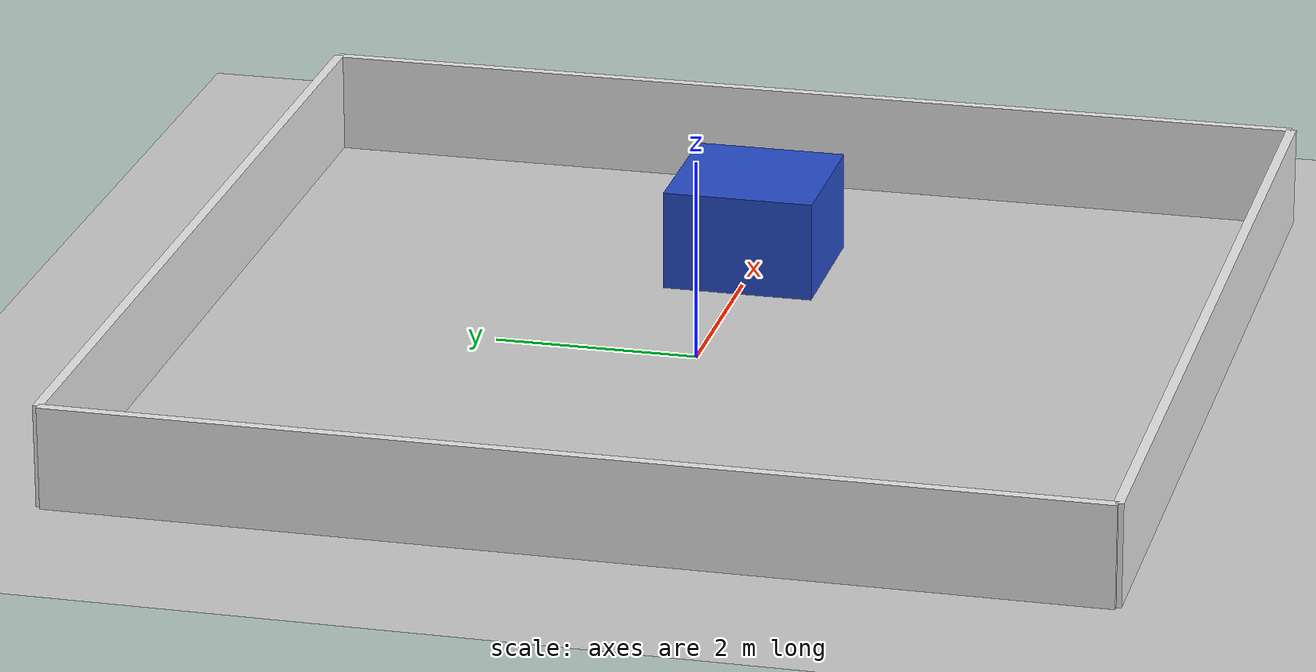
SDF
<sdf version='1.4'>
  <world name='default'>
    <light name='sun' type='directional'>
      <cast_shadows>1</cast_shadows>
      <pose>0 0 10 0 -0 0</pose>
      <diffuse>0.8 0.8 0.8 1</diffuse>
      <specular>0.2 0.2 0.2 1</specular>
      <attenuation>
        <range>1000</range>
        <constant>0.9</constant>
        <linear>0.01</linear>
        <quadratic>0.001</quadratic>
      </attenuation>
      <direction>-0.5 0.1 -0.9</direction>
    </light>

    <model name='ground_plane'>
      <static>1</static>
      <link name='link'>
        <collision name='collision'>
          <geometry><plane><normal>0 0 1</normal><size>100 100</size></plane></geometry>
          <surface>
            <friction><ode><mu>100</mu><mu2>50</mu2></ode></friction>
            <bounce/><contact><ode/></contact>
          </surface>
          <max_contacts>10</max_contacts>
        </collision>
        <visual name='visual'>
          <cast_shadows>0</cast_shadows>
          <geometry><plane><normal>0 0 1</normal><size>100 100</size></plane></geometry>
          <material>
            <script><uri>file://media/materials/scripts/gazebo.material</uri><name>Gazebo/Grey</name></script>
          </material>
        </visual>
        <velocity_decay><linear>0</linear><angular>0</angular></velocity_decay>
        <self_collide>0</self_collide>
        <kinematic>0</kinematic>
        <gravity>1</gravity>
      </link>
    </model>

    <physics type='ode'>
      <max_step_size>0.001</max_step_size>
      <real_time_factor>1</real_time_factor>
      <real_time_update_rate>1000</real_time_update_rate>
      <gravity>0 0 -9.8</gravity>
    </physics>

    <scene>
      <ambient>0.4 0.4 0.4 1</ambient>
      <background>0.7 0.7 0.7 1</background>
      <shadows>1</shadows>
    </scene>

    <spherical_coordinates>
      <surface_model>EARTH_WGS84</surface_model>
      <latitude_deg>0</latitude_deg>
      <longitude_deg>0</longitude_deg>
      <elevation>0</elevation>
      <heading_deg>0</heading_deg>
    </spherical_coordinates>

    <model name='wall_front'>
      <pose>5 0 0.5 0 0 0</pose>
      <static>1</static>
      <link name='link'>
        <collision name='collision'><geometry><box><size>0.1 10 1</size></box></geometry><max_contacts>10</max_contacts></collision>
        <visual name='visual'><geometry><box><size>0.1 10 1</size></box></geometry>
          <material><script><uri>file://media/materials/scripts/gazebo.material</uri><name>Gazebo/White</name></script></material>
        </visual>
      </link>
    </model>

    <model name='wall_back'>
      <pose>-5 0 0.5 0 0 0</pose>
      <static>1</static>
      <link name='link'>
        <collision name='collision'><geometry><box><size>0.1 10 1</size></box></geometry><max_contacts>10</max_contacts></collision>
        <visual name='visual'><geometry><box><size>0.1 10 1</size></box></geometry>
          <material><script><uri>file://media/materials/scripts/gazebo.material</uri><name>Gazebo/White</name></script></material>
        </visual>
      </link>
    </model>

    <model name='wall_left'>
      <pose>0 5 0.5 0 0 0</pose>
      <static>1</static>
      <link name='link'>
        <collision name='collision'><geometry><box><size>10 0.1 1</size></box></geometry><max_contacts>10</max_contacts></collision>
        <visual name='visual'><geometry><box><size>10 0.1 1</size></box></geometry>
          <material><script><uri>file://media/materials/scripts/gazebo.material</uri><name>Gazebo/White</name></script></material>
        </visual>
      </link>
    </model>

    <model name='wall_right'>
      <pose>0 -5 0.5 0 0 0</pose>
      <static>1</static>
      <link name='link'>
        <collision name='collision'><geometry><box><size>10 0.1 1</size></box></geometry><max_contacts>10</max_contacts></collision>
        <visual name='visual'><geometry><box><size>10 0.1 1</size></box></geometry>
          <material><script><uri>file://media/materials/scripts/gazebo.material</uri><name>Gazebo/White</name></script></material>
        </visual>
      </link>
    </model>

    <model name='center_square_block'>
      <pose>2.5 0 0.5 0 0 0</pose>
      <static>1</static>
      <link name='link'>
        <inertial>
          <mass>1</mass>
          <inertia><ixx>1</ixx><ixy>0</ixy><ixz>0</ixz><iyy>1</iyy><iyz>0</iyz><izz>1</izz></inertia>
        </inertial>
        <collision name='collision'>
          <geometry><box><size>1.5 1.5 1</size></box></geometry>
          <max_contacts>10</max_contacts>
          <surface><bounce/><friction><ode/></friction><contact><ode/></contact></surface>
        </collision>
        <visual name='visual'>
          <geometry><box><size>1.5 1.5 1</size></box></geometry>
          <material>
            <script><uri>file://media/materials/scripts/gazebo.material</uri><name>Gazebo/Blue</name></script>
          </material>
        </visual>
        <velocity_decay><linear>0</linear><angular>0</angular></velocity_decay>
        <self_collide>0</self_collide>
        <kinematic>0</kinematic>
        <gravity>1</gravity>
      </link>
    </model>

    <gui fullscreen='0'>
      <camera name='user_camera'>
        <pose>0.261395 -10.5509 17.1626 1.09996e-16 1.0418 1.42419</pose>
        <view_controller>orbit</view_controller>
      </camera>
    </gui>

  </world>
</sdf>
